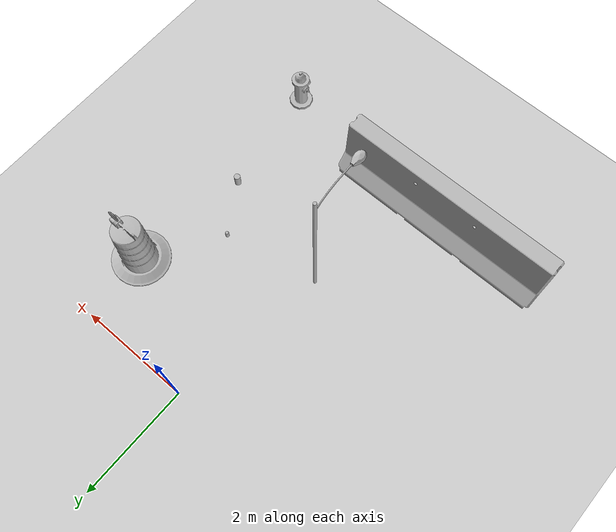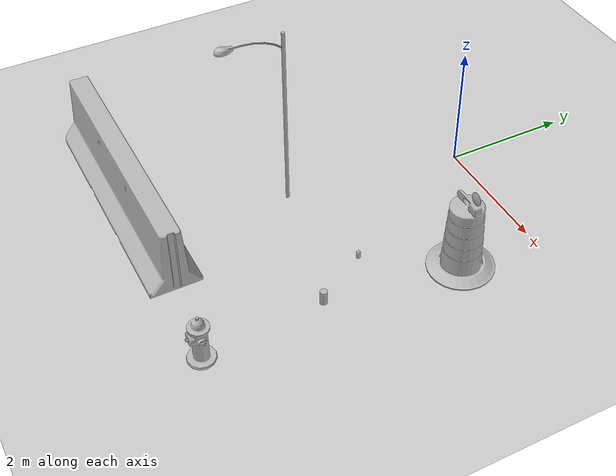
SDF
<sdf version="1.6">
 <world name="default">
  <light name="sun" type="directional">
   <pose>0 0 10 0 -0 0</pose>
   <diffuse>0.8 0.8 0.8 1</diffuse>
   <specular>0.1 0.1 0.1 1</specular>
   <attenuation>
    <range>1000</range>
    <constant>0.9</constant>
    <linear>0.01</linear>
    <quadratic>0.001</quadratic>
   </attenuation>
   <direction>-0.5 0.5 -1</direction>
  </light>
  <model name="ground_plane">
   <static>1</static>
   <link name="link">
    <collision name="collision">
     <geometry><plane><normal>0 0 1</normal><size>100 100</size></plane></geometry>
     <surface><friction><ode><mu>100</mu><mu2>50</mu2></ode></friction></surface>
    </collision>
    <visual name="visual">
     <cast_shadows>0</cast_shadows>
     <geometry><plane><normal>0 0 1</normal><size>100 100</size></plane></geometry>
     <material>
      <script><uri>file://media/materials/scripts/gazebo.material</uri><name>Gazebo/Grey</name></script>
     </material>
    </visual>
   </link>
  </model>
  <gravity>0 0 -9.8</gravity>
  <magnetic_field>6e-06 2.3e-05 -4.2e-05</magnetic_field>
  <atmosphere type="adiabatic"/>
  <physics name="default_physics" default="0" type="ode">
   <max_step_size>0.001</max_step_size>
   <real_time_factor>1</real_time_factor>
   <real_time_update_rate>1000</real_time_update_rate>
  </physics>
  <scene><ambient>0.4 0.4 0.4 1</ambient><background>0.7 0.7 0.7 1</background><shadows>1</shadows></scene>
  <spherical_coordinates>
   <surface_model>EARTH_WGS84</surface_model>
   <latitude_deg>0</latitude_deg>
   <longitude_deg>0</longitude_deg>
   <elevation>0</elevation>
   <heading_deg>0</heading_deg>
  </spherical_coordinates>
  <model name="jersey_barrier">
   <static>1</static>
   <link name="link">
    <visual name="visual">
     <geometry>
      <mesh><uri>model://jersey_barrier/meshes/jersey_barrier.dae</uri><scale>1 1 1</scale></mesh>
     </geometry>
    </visual>
    <collision name="upright">
     <pose>0 0 0.5715 0 -0 0</pose>
     <geometry><box><size>4.06542 0.3063 1.143</size></box></geometry>
    </collision>
    <collision name="base">
     <pose>0 0 0.032258 0 -0 0</pose>
     <geometry><box><size>4.06542 0.8107 0.064516</size></box></geometry>
    </collision>
    <collision name="base2">
     <pose>0 0 0.1 0 -0 0</pose>
     <geometry><box><size>4.06542 0.65 0.1</size></box></geometry>
    </collision>
    <collision name="base3">
     <pose>0 0 0.2 0 -0 0</pose>
     <geometry><box><size>4.06542 0.5 0.1</size></box></geometry>
    </collision>
    <collision name="left-angle">
     <pose>0 -0.224 0.2401 0.9 -0 0</pose>
     <geometry><box><size>4.06542 0.5 0.064516</size></box></geometry>
    </collision>
    <collision name="right-angle">
     <pose>0 0.224 0.2401 -0.9 0 0</pose>
     <geometry><box><size>4.06542 0.5 0.064516</size></box></geometry>
    </collision>
   </link>
   <pose>-1.35605 -5.1032 0 0 -0 0</pose>
  </model>
  <model name="Construction Barrel">
   <static>1</static>
   <link name="link">
    <inertial>
     <pose>0 0 0.4 0 -0 0</pose>
     <mass>500</mass>
     <inertia><ixx>51.2096</ixx><iyy>51.2096</iyy><izz>25</izz><ixy>0</ixy><ixz>0</ixz><iyz>0</iyz></inertia>
    </inertial>
    <collision name="collision">
     <geometry>
      <mesh><uri>model://construction_barrel/meshes/construction_barrel.dae</uri><scale>1 1 1</scale></mesh>
     </geometry>
    </collision>
    <visual name="visual">
     <geometry>
      <mesh><uri>model://construction_barrel/meshes/construction_barrel.dae</uri><scale>1 1 1</scale></mesh>
     </geometry>
    </visual>
   </link>
   <pose>2.0906 -1.25046 0 0 -0 0</pose>
  </model>
  <model name="fire_hydrant">
   <static>1</static>
   <link name="link">
    <collision name="collision">
     <geometry><mesh><uri>model://fire_hydrant/meshes/fire_hydrant.dae</uri><scale>1 1 1</scale></mesh></geometry>
    </collision>
    <visual name="visual">
     <geometry><mesh><uri>model://fire_hydrant/meshes/fire_hydrant.dae</uri><scale>1 1 1</scale></mesh></geometry>
    </visual>
   </link>
   <pose>2.02609 -5.30175 0 0 -0 0</pose>
  </model>
  <model name="coke_can">
   <link name="link">
    <inertial>
     <mass>0.39</mass>
     <inertia>
      <ixx>0.00055575</ixx>
      <ixy>0</ixy>
      <ixz>0</ixz>
      <iyy>0.00055575</iyy>
      <iyz>0</iyz>
      <izz>0.0001755</izz>
     </inertia>
    </inertial>
    <collision name="collision">
     <pose>0.003937 0.004724 -0.18 0 -0 0</pose>
     <geometry><mesh><uri>model://coke_can/meshes/coke_can.dae</uri><scale>1 1 1</scale></mesh></geometry>
    </collision>
    <visual name="visual">
     <pose>0.003937 0.004724 -0.18 0 -0 0</pose>
     <geometry><mesh><uri>model://coke_can/meshes/coke_can.dae</uri><scale>1 1 1</scale></mesh></geometry>
    </visual>
   </link>
   <pose>1.26297 -2.49863 -0.002565 -0.011132 0.003762 -2.51386</pose>
  </model>
  <model name="Lamp Post">
   <static>1</static>
   <link name="link">
    <collision name="collision">
     <geometry><mesh><uri>model://lamp_post/meshes/lamp_post.dae</uri><scale>1 1 1</scale></mesh></geometry>
    </collision>
    <visual name="visual">
     <geometry><mesh><uri>model://lamp_post/meshes/lamp_post.dae</uri><scale>1 1 1</scale></mesh></geometry>
    </visual>
   </link>
   <pose>-0.415994 -2.83739 0 0 -0 0</pose>
  </model>
  <model name="beer">
   <link name="link">
    <pose>0 0 0.115 0 -0 0</pose>
    <inertial>
     <mass>0.39</mass>
     <inertia><ixx>0.00058</ixx><ixy>0</ixy><ixz>0</ixz><iyy>0.00058</iyy><iyz>0</iyz><izz>0.00019</izz></inertia>
    </inertial>
    <collision name="collision">
     <geometry><cylinder><radius>0.055</radius><length>0.23</length></cylinder></geometry>
    </collision>
    <visual name="visual">
     <geometry><cylinder><radius>0.055</radius><length>0.23</length></cylinder></geometry>
     <material>
      <script>
       <uri>model://beer/materials/scripts</uri>
       <uri>model://beer/materials/textures</uri>
       <name>Beer/Diffuse</name>
      </script>
     </material>
    </visual>
   </link>
   <pose>1.81026 -3.36158 0.000208 -0.00359 -0.001219 0.370943</pose>
  </model>
 </world>
</sdf>
